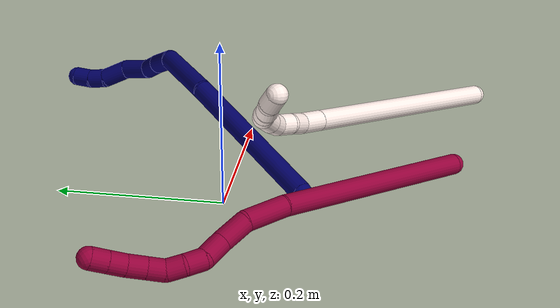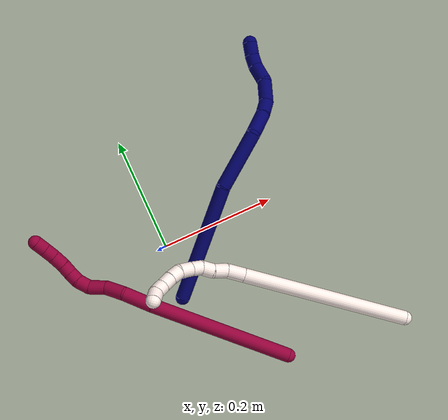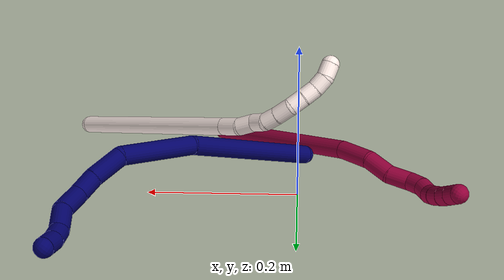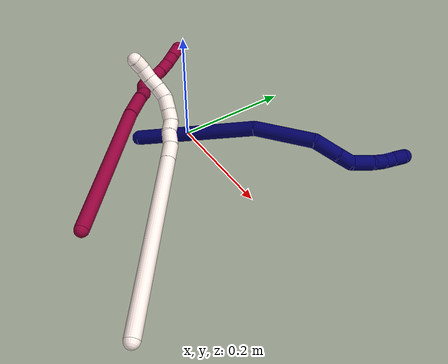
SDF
<sdf version="1.7">
 <world name="default">
  <model name="photoneo_s_sensor">
   <static>1</static>
   <pose>0 0 2 1.57079 1.57079 3.14159</pose>
   <link name="link">
    <inertial><mass>0.1</mass></inertial>
    <sensor name="sensor" type="depth">
     <update_rate>30</update_rate>
     <camera>
      <horizontal_fov>1.22</horizontal_fov>
      <image><width>1920</width><height>1200</height><format>B8G8R8</format></image>
      <clip><near>0.1</near><far>4</far></clip>
      <depth_camera><output>points</output></depth_camera>
     </camera>
     <plugin name="camera_plugin" filename="libgazebo_ros_depth_camera.so">
      <baseline>0.2</baseline>
      <alwaysOn>1</alwaysOn>
      <updateRate>0.0</updateRate>
      <cameraName>camera_ir</cameraName>
      <imageTopicName>/camera/color/image_raw</imageTopicName>
      <cameraInfoTopicName>/camera/color/camera_info</cameraInfoTopicName>
      <depthImageTopicName>/camera/depth/image_raw</depthImageTopicName>
      <depthImageCameraInfoTopicName>/camera/depth/camera_info</depthImageCameraInfoTopicName>
      <pointCloudTopicName>/camera/depth/points</pointCloudTopicName>
      <frameName>fr_optical</frameName>
      <pointCloudCutoff>0.1</pointCloudCutoff>
      <pointCloudCutoffMax>2.0</pointCloudCutoffMax>
      <distortionK1>0</distortionK1>
      <distortionK2>0</distortionK2>
      <distortionK3>0</distortionK3>
      <distortionT1>0</distortionT1>
      <distortionT2>0</distortionT2>
      <CxPrime>0</CxPrime>
      <Cx>0</Cx>
      <Cy>0</Cy>
      <focalLength>0</focalLength>
      <hackBaseline>0</hackBaseline>
     </plugin>
    </sensor>
   </link>
  </model>
  <model name="bin">
   <static>1</static>
   <link name="bottom">
    <collision name="collision-bottom">
     <pose>0 0 -0.01 0 -0 0</pose>
     <geometry><box><size>0.8 0.6 0.02</size></box></geometry>
     <surface>
      <friction><ode><mu>100</mu><mu2>100</mu2></ode></friction>
      <contact><collide_bitmask>65535</collide_bitmask></contact>
     </surface>
    </collision>
   </link>
   <link name="west_wall">
    <collision name="collision-west_wall">
     <pose>-0.41 0 0.1 0 -0 0</pose>
     <geometry><box><size>0.02 0.6 0.2</size></box></geometry>
     <surface>
      <friction><ode><mu>100</mu><mu2>100</mu2></ode></friction>
      <contact><collide_bitmask>65535</collide_bitmask></contact>
     </surface>
    </collision>
   </link>
   <link name="east_wall">
    <collision name="collision-east_wall">
     <pose>0.41 0 0.1 0 -0 0</pose>
     <geometry><box><size>0.02 0.6 0.2</size></box></geometry>
     <surface>
      <friction><ode><mu>100</mu><mu2>100</mu2></ode></friction>
      <contact><collide_bitmask>65535</collide_bitmask></contact>
     </surface>
    </collision>
   </link>
   <link name="south_wall">
    <collision name="collision-south_wall">
     <pose>0 -0.31 0.1 0 -0 0</pose>
     <geometry><box><size>0.8 0.02 0.2</size></box></geometry>
     <surface>
      <friction><ode><mu>100</mu><mu2>100</mu2></ode></friction>
      <contact><collide_bitmask>65535</collide_bitmask></contact>
     </surface>
    </collision>
   </link>
   <link name="north_wall">
    <collision name="collision-north_wall">
     <pose>0 0.31 0.1 0 -0 0</pose>
     <geometry><box><size>0.8 0.02 0.2</size></box></geometry>
     <surface>
      <friction><ode><mu>100</mu><mu2>100</mu2></ode></friction>
      <contact><collide_bitmask>65535</collide_bitmask></contact>
     </surface>
    </collision>
   </link>
  </model>
  <model name="7">
   <static>0</static>
   <link name="7">
    <collision name="collision-cylinder-e_1_1_4">
     <pose>0.052697 0.041463 -0.08074 -2.66717 0.526029 -1.67828</pose>
     <geometry><cylinder><radius>0.0125</radius><length>0.209905</length></cylinder></geometry>
     <surface>
      <friction><ode><mu>1.16</mu><mu2>1.16</mu2><slip1>0</slip1><slip2>0</slip2></ode></friction>
      <contact><ode><kp>1e+06</kp><kd>1</kd><max_vel>0</max_vel><min_depth>0.001</min_depth></ode></contact>
     </surface>
    </collision>
    <visual name="visual-cylinder-e_1_1_4">
     <pose>0.052697 0.041463 -0.08074 -2.66717 0.526029 -1.67828</pose>
     <geometry><cylinder><radius>0.0125</radius><length>0.209905</length></cylinder></geometry>
     <material><ambient>0.003922 0 0.403922 1</ambient></material>
    </visual>
    <collision name="collision-cylinder-e_2_4_5">
     <pose>0.123663 0.114634 -0.197025 -2.4132 0.366221 -0.904436</pose>
     <geometry><cylinder><radius>0.0125</radius><length>0.102033</length></cylinder></geometry>
     <surface>
      <friction><ode><mu>1.16</mu><mu2>1.16</mu2><slip1>0</slip1><slip2>0</slip2></ode></friction>
      <contact><ode><kp>1e+06</kp><kd>1</kd><max_vel>0</max_vel><min_depth>0.001</min_depth></ode></contact>
     </surface>
    </collision>
    <visual name="visual-cylinder-e_2_4_5">
     <pose>0.123663 0.114634 -0.197025 -2.4132 0.366221 -0.904436</pose>
     <geometry><cylinder><radius>0.0125</radius><length>0.102033</length></cylinder></geometry>
     <material><ambient>0.003922 0 0.403922 1</ambient></material>
    </visual>
    <collision name="collision-cylinder-e_3_5_6">
     <pose>0.148984 0.165977 -0.238738 -1.87512 0.330168 -0.446339</pose>
     <geometry><cylinder><radius>0.0125</radius><length>0.043511</length></cylinder></geometry>
     <surface>
      <friction><ode><mu>1.16</mu><mu2>1.16</mu2><slip1>0</slip1><slip2>0</slip2></ode></friction>
      <contact><ode><kp>1e+06</kp><kd>1</kd><max_vel>0</max_vel><min_depth>0.001</min_depth></ode></contact>
     </surface>
    </collision>
    <visual name="visual-cylinder-e_3_5_6">
     <pose>0.148984 0.165977 -0.238738 -1.87512 0.330168 -0.446339</pose>
     <geometry><cylinder><radius>0.0125</radius><length>0.043511</length></cylinder></geometry>
     <material><ambient>0.003922 0 0.403922 1</ambient></material>
    </visual>
    <collision name="collision-cylinder-e_4_6_7">
     <pose>0.162024 0.198414 -0.24685 -1.72156 0.433044 -0.50107</pose>
     <geometry><cylinder><radius>0.0125</radius><length>0.028531</length></cylinder></geometry>
     <surface>
      <friction><ode><mu>1.16</mu><mu2>1.16</mu2><slip1>0</slip1><slip2>0</slip2></ode></friction>
      <contact><ode><kp>1e+06</kp><kd>1</kd><max_vel>0</max_vel><min_depth>0.001</min_depth></ode></contact>
     </surface>
    </collision>
    <visual name="visual-cylinder-e_4_6_7">
     <pose>0.162024 0.198414 -0.24685 -1.72156 0.433044 -0.50107</pose>
     <geometry><cylinder><radius>0.0125</radius><length>0.028531</length></cylinder></geometry>
     <material><ambient>0.003922 0 0.403922 1</ambient></material>
    </visual>
    <collision name="collision-cylinder-e_5_7_8">
     <pose>0.182656 0.222505 -0.253274 -1.94853 0.878454 -1.21053</pose>
     <geometry><cylinder><radius>0.0125</radius><length>0.038052</length></cylinder></geometry>
     <surface>
      <friction><ode><mu>1.16</mu><mu2>1.16</mu2><slip1>0</slip1><slip2>0</slip2></ode></friction>
      <contact><ode><kp>1e+06</kp><kd>1</kd><max_vel>0</max_vel><min_depth>0.001</min_depth></ode></contact>
     </surface>
    </collision>
    <visual name="visual-cylinder-e_5_7_8">
     <pose>0.182656 0.222505 -0.253274 -1.94853 0.878454 -1.21053</pose>
     <geometry><cylinder><radius>0.0125</radius><length>0.038052</length></cylinder></geometry>
     <material><ambient>0.003922 0 0.403922 1</ambient></material>
    </visual>
    <collision name="collision-cylinder-e_6_8_9">
     <pose>0.211592 0.242413 -0.254454 -1.20517 0.9974 -0.71695</pose>
     <geometry><cylinder><radius>0.0125</radius><length>0.034023</length></cylinder></geometry>
     <surface>
      <friction><ode><mu>1.16</mu><mu2>1.16</mu2><slip1>0</slip1><slip2>0</slip2></ode></friction>
      <contact><ode><kp>1e+06</kp><kd>1</kd><max_vel>0</max_vel><min_depth>0.001</min_depth></ode></contact>
     </surface>
    </collision>
    <visual name="visual-cylinder-e_6_8_9">
     <pose>0.211592 0.242413 -0.254454 -1.20517 0.9974 -0.71695</pose>
     <geometry><cylinder><radius>0.0125</radius><length>0.034023</length></cylinder></geometry>
     <material><ambient>0.003922 0 0.403922 1</ambient></material>
    </visual>
    <collision name="collision-cylinder-e_7_9_10">
     <pose>0.235342 0.25555 -0.252372 -1.83387 1.11141 -1.36204</pose>
     <geometry><cylinder><radius>0.0125</radius><length>0.021106</length></cylinder></geometry>
     <surface>
      <friction><ode><mu>1.16</mu><mu2>1.16</mu2><slip1>0</slip1><slip2>0</slip2></ode></friction>
      <contact><ode><kp>1e+06</kp><kd>1</kd><max_vel>0</max_vel><min_depth>0.001</min_depth></ode></contact>
     </surface>
    </collision>
    <visual name="visual-cylinder-e_7_9_10">
     <pose>0.235342 0.25555 -0.252372 -1.83387 1.11141 -1.36204</pose>
     <geometry><cylinder><radius>0.0125</radius><length>0.021106</length></cylinder></geometry>
     <material><ambient>0.003922 0 0.403922 1</ambient></material>
    </visual>
    <collision name="collision-cylinder-e_8_10_2">
     <pose>0.254623 0.264582 -0.257268 -2.25468 1.03558 -1.75147</pose>
     <geometry><cylinder><radius>0.0125</radius><length>0.022838</length></cylinder></geometry>
     <surface>
      <friction><ode><mu>1.16</mu><mu2>1.16</mu2><slip1>0</slip1><slip2>0</slip2></ode></friction>
      <contact><ode><kp>1e+06</kp><kd>1</kd><max_vel>0</max_vel><min_depth>0.001</min_depth></ode></contact>
     </surface>
    </collision>
    <visual name="visual-cylinder-e_8_10_2">
     <pose>0.254623 0.264582 -0.257268 -2.25468 1.03558 -1.75147</pose>
     <geometry><cylinder><radius>0.0125</radius><length>0.022838</length></cylinder></geometry>
     <material><ambient>0.003922 0 0.403922 1</ambient></material>
    </visual>
    <collision name="collision-sphere-2">
     <pose>0.264445 0.269096 -0.260948 0 -0 0</pose>
     <geometry><sphere><radius>0.0125</radius></sphere></geometry>
     <surface>
      <friction><ode><mu>1.16</mu><mu2>1.16</mu2><slip1>0</slip1><slip2>0</slip2></ode></friction>
      <contact><ode><kp>1e+06</kp><kd>1</kd><max_vel>0</max_vel><min_depth>0.001</min_depth></ode></contact>
     </surface>
    </collision>
    <visual name="visual-sphere-2">
     <pose>0.264445 0.269096 -0.260948 0 -0 0</pose>
     <geometry><sphere><radius>0.0125</radius></sphere></geometry>
     <material><ambient>0.003922 0 0.403922 1</ambient></material>
    </visual>
    <collision name="collision-sphere-10">
     <pose>0.244801 0.260068 -0.253588 0 -0 0</pose>
     <geometry><sphere><radius>0.0125</radius></sphere></geometry>
     <surface>
      <friction><ode><mu>1.16</mu><mu2>1.16</mu2><slip1>0</slip1><slip2>0</slip2></ode></friction>
      <contact><ode><kp>1e+06</kp><kd>1</kd><max_vel>0</max_vel><min_depth>0.001</min_depth></ode></contact>
     </surface>
    </collision>
    <visual name="visual-sphere-10">
     <pose>0.244801 0.260068 -0.253588 0 -0 0</pose>
     <geometry><sphere><radius>0.0125</radius></sphere></geometry>
     <material><ambient>0.003922 0 0.403922 1</ambient></material>
    </visual>
    <collision name="collision-sphere-9">
     <pose>0.225883 0.251031 -0.251155 0 -0 0</pose>
     <geometry><sphere><radius>0.0125</radius></sphere></geometry>
     <surface>
      <friction><ode><mu>1.16</mu><mu2>1.16</mu2><slip1>0</slip1><slip2>0</slip2></ode></friction>
      <contact><ode><kp>1e+06</kp><kd>1</kd><max_vel>0</max_vel><min_depth>0.001</min_depth></ode></contact>
     </surface>
    </collision>
    <visual name="visual-sphere-9">
     <pose>0.225883 0.251031 -0.251155 0 -0 0</pose>
     <geometry><sphere><radius>0.0125</radius></sphere></geometry>
     <material><ambient>0.003922 0 0.403922 1</ambient></material>
    </visual>
    <collision name="collision-sphere-4">
     <pose>0.105394 0.082926 -0.161479 0 -0 0</pose>
     <geometry><sphere><radius>0.0125</radius></sphere></geometry>
     <surface>
      <friction><ode><mu>1.16</mu><mu2>1.16</mu2><slip1>0</slip1><slip2>0</slip2></ode></friction>
      <contact><ode><kp>1e+06</kp><kd>1</kd><max_vel>0</max_vel><min_depth>0.001</min_depth></ode></contact>
     </surface>
    </collision>
    <visual name="visual-sphere-4">
     <pose>0.105394 0.082926 -0.161479 0 -0 0</pose>
     <geometry><sphere><radius>0.0125</radius></sphere></geometry>
     <material><ambient>0.003922 0 0.403922 1</ambient></material>
    </visual>
    <collision name="collision-sphere-1">
     <geometry><sphere><radius>0.0125</radius></sphere></geometry>
     <surface>
      <friction><ode><mu>1.16</mu><mu2>1.16</mu2><slip1>0</slip1><slip2>0</slip2></ode></friction>
      <contact><ode><kp>1e+06</kp><kd>1</kd><max_vel>0</max_vel><min_depth>0.001</min_depth></ode></contact>
     </surface>
    </collision>
    <visual name="visual-sphere-1">
     <geometry><sphere><radius>0.0125</radius></sphere></geometry>
     <material><ambient>0.003922 0 0.403922 1</ambient></material>
    </visual>
    <collision name="collision-sphere-8">
     <pose>0.197301 0.233794 -0.257754 0 -0 0</pose>
     <geometry><sphere><radius>0.0125</radius></sphere></geometry>
     <surface>
      <friction><ode><mu>1.16</mu><mu2>1.16</mu2><slip1>0</slip1><slip2>0</slip2></ode></friction>
      <contact><ode><kp>1e+06</kp><kd>1</kd><max_vel>0</max_vel><min_depth>0.001</min_depth></ode></contact>
     </surface>
    </collision>
    <visual name="visual-sphere-8">
     <pose>0.197301 0.233794 -0.257754 0 -0 0</pose>
     <geometry><sphere><radius>0.0125</radius></sphere></geometry>
     <material><ambient>0.003922 0 0.403922 1</ambient></material>
    </visual>
    <collision name="collision-sphere-5">
     <pose>0.141931 0.146343 -0.232572 0 -0 0</pose>
     <geometry><sphere><radius>0.0125</radius></sphere></geometry>
     <surface>
      <friction><ode><mu>1.16</mu><mu2>1.16</mu2><slip1>0</slip1><slip2>0</slip2></ode></friction>
      <contact><ode><kp>1e+06</kp><kd>1</kd><max_vel>0</max_vel><min_depth>0.001</min_depth></ode></contact>
     </surface>
    </collision>
    <visual name="visual-sphere-5">
     <pose>0.141931 0.146343 -0.232572 0 -0 0</pose>
     <geometry><sphere><radius>0.0125</radius></sphere></geometry>
     <material><ambient>0.003922 0 0.403922 1</ambient></material>
    </visual>
    <collision name="collision-sphere-6">
     <pose>0.156037 0.185612 -0.244905 0 -0 0</pose>
     <geometry><sphere><radius>0.0125</radius></sphere></geometry>
     <surface>
      <friction><ode><mu>1.16</mu><mu2>1.16</mu2><slip1>0</slip1><slip2>0</slip2></ode></friction>
      <contact><ode><kp>1e+06</kp><kd>1</kd><max_vel>0</max_vel><min_depth>0.001</min_depth></ode></contact>
     </surface>
    </collision>
    <visual name="visual-sphere-6">
     <pose>0.156037 0.185612 -0.244905 0 -0 0</pose>
     <geometry><sphere><radius>0.0125</radius></sphere></geometry>
     <material><ambient>0.003922 0 0.403922 1</ambient></material>
    </visual>
    <collision name="collision-sphere-7">
     <pose>0.16801 0.211216 -0.248795 0 -0 0</pose>
     <geometry><sphere><radius>0.0125</radius></sphere></geometry>
     <surface>
      <friction><ode><mu>1.16</mu><mu2>1.16</mu2><slip1>0</slip1><slip2>0</slip2></ode></friction>
      <contact><ode><kp>1e+06</kp><kd>1</kd><max_vel>0</max_vel><min_depth>0.001</min_depth></ode></contact>
     </surface>
    </collision>
    <visual name="visual-sphere-7">
     <pose>0.16801 0.211216 -0.248795 0 -0 0</pose>
     <geometry><sphere><radius>0.0125</radius></sphere></geometry>
     <material><ambient>0.003922 0 0.403922 1</ambient></material>
    </visual>
    <inertial>
     <pose>0.119432 0.122867 -0.167957 0 -0 0</pose>
     <mass>0.5</mass>
     <inertia>
      <ixx>-0.000735</ixx>
      <ixy>0</ixy>
      <ixz>0</ixz>
      <iyy>-0.000493</iyy>
      <iyz>0</iyz>
      <izz>-0.000843</izz>
     </inertia>
    </inertial>
   </link>
   <pose>-0.008621 -0.092738 0.027727 -2.29654 -0.091126 1.83586</pose>
  </model>
  <model name="8">
   <static>0</static>
   <link name="8">
    <collision name="collision-cylinder-e_1_1_4">
     <pose>-0.039916 0.001844 0.121727 -0.015145 -0.316831 0.00242</pose>
     <geometry><cylinder><radius>0.0125</radius><length>0.256235</length></cylinder></geometry>
     <surface>
      <friction><ode><mu>1.16</mu><mu2>1.16</mu2><slip1>0</slip1><slip2>0</slip2></ode></friction>
      <contact><ode><kp>1e+06</kp><kd>1</kd><max_vel>0</max_vel><min_depth>0.001</min_depth></ode></contact>
     </surface>
    </collision>
    <visual name="visual-cylinder-e_1_1_4">
     <pose>-0.039916 0.001844 0.121727 -0.015145 -0.316831 0.00242</pose>
     <geometry><cylinder><radius>0.0125</radius><length>0.256235</length></cylinder></geometry>
     <material><ambient>0.584314 0 0.227451 1</ambient></material>
    </visual>
    <collision name="collision-cylinder-e_2_4_5">
     <pose>-0.083995 0.003637 0.268734 0.001991 -0.163222 -0.000163</pose>
     <geometry><cylinder><radius>0.0125</radius><length>0.051243</length></cylinder></geometry>
     <surface>
      <friction><ode><mu>1.16</mu><mu2>1.16</mu2><slip1>0</slip1><slip2>0</slip2></ode></friction>
      <contact><ode><kp>1e+06</kp><kd>1</kd><max_vel>0</max_vel><min_depth>0.001</min_depth></ode></contact>
     </surface>
    </collision>
    <visual name="visual-cylinder-e_2_4_5">
     <pose>-0.083995 0.003637 0.268734 0.001991 -0.163222 -0.000163</pose>
     <geometry><cylinder><radius>0.0125</radius><length>0.051243</length></cylinder></geometry>
     <material><ambient>0.584314 0 0.227451 1</ambient></material>
    </visual>
    <collision name="collision-cylinder-e_3_5_6">
     <pose>-0.085454 0.00589 0.311743 -0.129197 0.150169 -0.009732</pose>
     <geometry><cylinder><radius>0.0125</radius><length>0.03616</length></cylinder></geometry>
     <surface>
      <friction><ode><mu>1.16</mu><mu2>1.16</mu2><slip1>0</slip1><slip2>0</slip2></ode></friction>
      <contact><ode><kp>1e+06</kp><kd>1</kd><max_vel>0</max_vel><min_depth>0.001</min_depth></ode></contact>
     </surface>
    </collision>
    <visual name="visual-cylinder-e_3_5_6">
     <pose>-0.085454 0.00589 0.311743 -0.129197 0.150169 -0.009732</pose>
     <geometry><cylinder><radius>0.0125</radius><length>0.03616</length></cylinder></geometry>
     <material><ambient>0.584314 0 0.227451 1</ambient></material>
    </visual>
    <collision name="collision-cylinder-e_4_6_7">
     <pose>-0.083601 0.013963 0.343747 -0.384088 -0.05531 0.010757</pose>
     <geometry><cylinder><radius>0.0125</radius><length>0.030843</length></cylinder></geometry>
     <surface>
      <friction><ode><mu>1.16</mu><mu2>1.16</mu2><slip1>0</slip1><slip2>0</slip2></ode></friction>
      <contact><ode><kp>1e+06</kp><kd>1</kd><max_vel>0</max_vel><min_depth>0.001</min_depth></ode></contact>
     </surface>
    </collision>
    <visual name="visual-cylinder-e_4_6_7">
     <pose>-0.083601 0.013963 0.343747 -0.384088 -0.05531 0.010757</pose>
     <geometry><cylinder><radius>0.0125</radius><length>0.030843</length></cylinder></geometry>
     <material><ambient>0.584314 0 0.227451 1</ambient></material>
    </visual>
    <collision name="collision-cylinder-e_5_7_8">
     <pose>-0.086323 0.018712 0.369121 0.091724 -0.166152 -0.007643</pose>
     <geometry><cylinder><radius>0.0125</radius><length>0.022603</length></cylinder></geometry>
     <surface>
      <friction><ode><mu>1.16</mu><mu2>1.16</mu2><slip1>0</slip1><slip2>0</slip2></ode></friction>
      <contact><ode><kp>1e+06</kp><kd>1</kd><max_vel>0</max_vel><min_depth>0.001</min_depth></ode></contact>
     </surface>
    </collision>
    <visual name="visual-cylinder-e_5_7_8">
     <pose>-0.086323 0.018712 0.369121 0.091724 -0.166152 -0.007643</pose>
     <geometry><cylinder><radius>0.0125</radius><length>0.022603</length></cylinder></geometry>
     <material><ambient>0.584314 0 0.227451 1</ambient></material>
    </visual>
    <collision name="collision-cylinder-e_6_8_9">
     <pose>-0.088039 0.014243 0.389723 0.348033 0.015163 0.002666</pose>
     <geometry><cylinder><radius>0.0125</radius><length>0.02022</length></cylinder></geometry>
     <surface>
      <friction><ode><mu>1.16</mu><mu2>1.16</mu2><slip1>0</slip1><slip2>0</slip2></ode></friction>
      <contact><ode><kp>1e+06</kp><kd>1</kd><max_vel>0</max_vel><min_depth>0.001</min_depth></ode></contact>
     </surface>
    </collision>
    <visual name="visual-cylinder-e_6_8_9">
     <pose>-0.088039 0.014243 0.389723 0.348033 0.015163 0.002666</pose>
     <geometry><cylinder><radius>0.0125</radius><length>0.02022</length></cylinder></geometry>
     <material><ambient>0.584314 0 0.227451 1</ambient></material>
    </visual>
    <collision name="collision-cylinder-e_7_9_10">
     <pose>-0.091491 0.005898 0.407333 0.543392 -0.363767 -0.102383</pose>
     <geometry><cylinder><radius>0.0125</radius><length>0.020269</length></cylinder></geometry>
     <surface>
      <friction><ode><mu>1.16</mu><mu2>1.16</mu2><slip1>0</slip1><slip2>0</slip2></ode></friction>
      <contact><ode><kp>1e+06</kp><kd>1</kd><max_vel>0</max_vel><min_depth>0.001</min_depth></ode></contact>
     </surface>
    </collision>
    <visual name="visual-cylinder-e_7_9_10">
     <pose>-0.091491 0.005898 0.407333 0.543392 -0.363767 -0.102383</pose>
     <geometry><cylinder><radius>0.0125</radius><length>0.020269</length></cylinder></geometry>
     <material><ambient>0.584314 0 0.227451 1</ambient></material>
    </visual>
    <collision name="collision-cylinder-e_8_10_11">
     <pose>-0.099929 -0.0033 0.424571 0.440219 -0.446461 -0.101494</pose>
     <geometry><cylinder><radius>0.0125</radius><length>0.022379</length></cylinder></geometry>
     <surface>
      <friction><ode><mu>1.16</mu><mu2>1.16</mu2><slip1>0</slip1><slip2>0</slip2></ode></friction>
      <contact><ode><kp>1e+06</kp><kd>1</kd><max_vel>0</max_vel><min_depth>0.001</min_depth></ode></contact>
     </surface>
    </collision>
    <visual name="visual-cylinder-e_8_10_11">
     <pose>-0.099929 -0.0033 0.424571 0.440219 -0.446461 -0.101494</pose>
     <geometry><cylinder><radius>0.0125</radius><length>0.022379</length></cylinder></geometry>
     <material><ambient>0.584314 0 0.227451 1</ambient></material>
    </visual>
    <collision name="collision-cylinder-e_9_11_12">
     <pose>-0.109967 -0.010965 0.441553 0.404896 -0.547433 -0.115132</pose>
     <geometry><cylinder><radius>0.0125</radius><length>0.020008</length></cylinder></geometry>
     <surface>
      <friction><ode><mu>1.16</mu><mu2>1.16</mu2><slip1>0</slip1><slip2>0</slip2></ode></friction>
      <contact><ode><kp>1e+06</kp><kd>1</kd><max_vel>0</max_vel><min_depth>0.001</min_depth></ode></contact>
     </surface>
    </collision>
    <visual name="visual-cylinder-e_9_11_12">
     <pose>-0.109967 -0.010965 0.441553 0.404896 -0.547433 -0.115132</pose>
     <geometry><cylinder><radius>0.0125</radius><length>0.020008</length></cylinder></geometry>
     <material><ambient>0.584314 0 0.227451 1</ambient></material>
    </visual>
    <collision name="collision-cylinder-e_10_12_2">
     <pose>-0.120563 -0.017565 0.457208 0.392926 -0.56783 -0.116023</pose>
     <geometry><cylinder><radius>0.0125</radius><length>0.02004</length></cylinder></geometry>
     <surface>
      <friction><ode><mu>1.16</mu><mu2>1.16</mu2><slip1>0</slip1><slip2>0</slip2></ode></friction>
      <contact><ode><kp>1e+06</kp><kd>1</kd><max_vel>0</max_vel><min_depth>0.001</min_depth></ode></contact>
     </surface>
    </collision>
    <visual name="visual-cylinder-e_10_12_2">
     <pose>-0.120563 -0.017565 0.457208 0.392926 -0.56783 -0.116023</pose>
     <geometry><cylinder><radius>0.0125</radius><length>0.02004</length></cylinder></geometry>
     <material><ambient>0.584314 0 0.227451 1</ambient></material>
    </visual>
    <collision name="collision-sphere-2">
     <pose>-0.125952 -0.020799 0.465012 0 -0 0</pose>
     <geometry><sphere><radius>0.0125</radius></sphere></geometry>
     <surface>
      <friction><ode><mu>1.16</mu><mu2>1.16</mu2><slip1>0</slip1><slip2>0</slip2></ode></friction>
      <contact><ode><kp>1e+06</kp><kd>1</kd><max_vel>0</max_vel><min_depth>0.001</min_depth></ode></contact>
     </surface>
    </collision>
    <visual name="visual-sphere-2">
     <pose>-0.125952 -0.020799 0.465012 0 -0 0</pose>
     <geometry><sphere><radius>0.0125</radius></sphere></geometry>
     <material><ambient>0.584314 0 0.227451 1</ambient></material>
    </visual>
    <collision name="collision-sphere-12">
     <pose>-0.115174 -0.01433 0.449404 0 -0 0</pose>
     <geometry><sphere><radius>0.0125</radius></sphere></geometry>
     <surface>
      <friction><ode><mu>1.16</mu><mu2>1.16</mu2><slip1>0</slip1><slip2>0</slip2></ode></friction>
      <contact><ode><kp>1e+06</kp><kd>1</kd><max_vel>0</max_vel><min_depth>0.001</min_depth></ode></contact>
     </surface>
    </collision>
    <visual name="visual-sphere-12">
     <pose>-0.115174 -0.01433 0.449404 0 -0 0</pose>
     <geometry><sphere><radius>0.0125</radius></sphere></geometry>
     <material><ambient>0.584314 0 0.227451 1</ambient></material>
    </visual>
    <collision name="collision-sphere-11">
     <pose>-0.10476 -0.007601 0.433701 0 -0 0</pose>
     <geometry><sphere><radius>0.0125</radius></sphere></geometry>
     <surface>
      <friction><ode><mu>1.16</mu><mu2>1.16</mu2><slip1>0</slip1><slip2>0</slip2></ode></friction>
      <contact><ode><kp>1e+06</kp><kd>1</kd><max_vel>0</max_vel><min_depth>0.001</min_depth></ode></contact>
     </surface>
    </collision>
    <visual name="visual-sphere-11">
     <pose>-0.10476 -0.007601 0.433701 0 -0 0</pose>
     <geometry><sphere><radius>0.0125</radius></sphere></geometry>
     <material><ambient>0.584314 0 0.227451 1</ambient></material>
    </visual>
    <collision name="collision-sphere-10">
     <pose>-0.095097 0.001001 0.41544 0 -0 0</pose>
     <geometry><sphere><radius>0.0125</radius></sphere></geometry>
     <surface>
      <friction><ode><mu>1.16</mu><mu2>1.16</mu2><slip1>0</slip1><slip2>0</slip2></ode></friction>
      <contact><ode><kp>1e+06</kp><kd>1</kd><max_vel>0</max_vel><min_depth>0.001</min_depth></ode></contact>
     </surface>
    </collision>
    <visual name="visual-sphere-10">
     <pose>-0.095097 0.001001 0.41544 0 -0 0</pose>
     <geometry><sphere><radius>0.0125</radius></sphere></geometry>
     <material><ambient>0.584314 0 0.227451 1</ambient></material>
    </visual>
    <collision name="collision-sphere-9">
     <pose>-0.087885 0.010795 0.399226 0 -0 0</pose>
     <geometry><sphere><radius>0.0125</radius></sphere></geometry>
     <surface>
      <friction><ode><mu>1.16</mu><mu2>1.16</mu2><slip1>0</slip1><slip2>0</slip2></ode></friction>
      <contact><ode><kp>1e+06</kp><kd>1</kd><max_vel>0</max_vel><min_depth>0.001</min_depth></ode></contact>
     </surface>
    </collision>
    <visual name="visual-sphere-9">
     <pose>-0.087885 0.010795 0.399226 0 -0 0</pose>
     <geometry><sphere><radius>0.0125</radius></sphere></geometry>
     <material><ambient>0.584314 0 0.227451 1</ambient></material>
    </visual>
    <collision name="collision-sphere-4">
     <pose>-0.079832 0.003687 0.243453 0 -0 0</pose>
     <geometry><sphere><radius>0.0125</radius></sphere></geometry>
     <surface>
      <friction><ode><mu>1.16</mu><mu2>1.16</mu2><slip1>0</slip1><slip2>0</slip2></ode></friction>
      <contact><ode><kp>1e+06</kp><kd>1</kd><max_vel>0</max_vel><min_depth>0.001</min_depth></ode></contact>
     </surface>
    </collision>
    <visual name="visual-sphere-4">
     <pose>-0.079832 0.003687 0.243453 0 -0 0</pose>
     <geometry><sphere><radius>0.0125</radius></sphere></geometry>
     <material><ambient>0.584314 0 0.227451 1</ambient></material>
    </visual>
    <collision name="collision-sphere-1">
     <geometry><sphere><radius>0.0125</radius></sphere></geometry>
     <surface>
      <friction><ode><mu>1.16</mu><mu2>1.16</mu2><slip1>0</slip1><slip2>0</slip2></ode></friction>
      <contact><ode><kp>1e+06</kp><kd>1</kd><max_vel>0</max_vel><min_depth>0.001</min_depth></ode></contact>
     </surface>
    </collision>
    <visual name="visual-sphere-1">
     <geometry><sphere><radius>0.0125</radius></sphere></geometry>
     <material><ambient>0.584314 0 0.227451 1</ambient></material>
    </visual>
    <collision name="collision-sphere-8">
     <pose>-0.088192 0.017691 0.38022 0 -0 0</pose>
     <geometry><sphere><radius>0.0125</radius></sphere></geometry>
     <surface>
      <friction><ode><mu>1.16</mu><mu2>1.16</mu2><slip1>0</slip1><slip2>0</slip2></ode></friction>
      <contact><ode><kp>1e+06</kp><kd>1</kd><max_vel>0</max_vel><min_depth>0.001</min_depth></ode></contact>
     </surface>
    </collision>
    <visual name="visual-sphere-8">
     <pose>-0.088192 0.017691 0.38022 0 -0 0</pose>
     <geometry><sphere><radius>0.0125</radius></sphere></geometry>
     <material><ambient>0.584314 0 0.227451 1</ambient></material>
    </visual>
    <collision name="collision-sphere-5">
     <pose>-0.088159 0.003587 0.294015 0 -0 0</pose>
     <geometry><sphere><radius>0.0125</radius></sphere></geometry>
     <surface>
      <friction><ode><mu>1.16</mu><mu2>1.16</mu2><slip1>0</slip1><slip2>0</slip2></ode></friction>
      <contact><ode><kp>1e+06</kp><kd>1</kd><max_vel>0</max_vel><min_depth>0.001</min_depth></ode></contact>
     </surface>
    </collision>
    <visual name="visual-sphere-5">
     <pose>-0.088159 0.003587 0.294015 0 -0 0</pose>
     <geometry><sphere><radius>0.0125</radius></sphere></geometry>
     <material><ambient>0.584314 0 0.227451 1</ambient></material>
    </visual>
    <collision name="collision-sphere-6">
     <pose>-0.082749 0.008193 0.329471 0 -0 0</pose>
     <geometry><sphere><radius>0.0125</radius></sphere></geometry>
     <surface>
      <friction><ode><mu>1.16</mu><mu2>1.16</mu2><slip1>0</slip1><slip2>0</slip2></ode></friction>
      <contact><ode><kp>1e+06</kp><kd>1</kd><max_vel>0</max_vel><min_depth>0.001</min_depth></ode></contact>
     </surface>
    </collision>
    <visual name="visual-sphere-6">
     <pose>-0.082749 0.008193 0.329471 0 -0 0</pose>
     <geometry><sphere><radius>0.0125</radius></sphere></geometry>
     <material><ambient>0.584314 0 0.227451 1</ambient></material>
    </visual>
    <collision name="collision-sphere-7">
     <pose>-0.084454 0.019733 0.358023 0 -0 0</pose>
     <geometry><sphere><radius>0.0125</radius></sphere></geometry>
     <surface>
      <friction><ode><mu>1.16</mu><mu2>1.16</mu2><slip1>0</slip1><slip2>0</slip2></ode></friction>
      <contact><ode><kp>1e+06</kp><kd>1</kd><max_vel>0</max_vel><min_depth>0.001</min_depth></ode></contact>
     </surface>
    </collision>
    <visual name="visual-sphere-7">
     <pose>-0.084454 0.019733 0.358023 0 -0 0</pose>
     <geometry><sphere><radius>0.0125</radius></sphere></geometry>
     <material><ambient>0.584314 0 0.227451 1</ambient></material>
    </visual>
    <inertial>
     <pose>-0.065278 0.002975 0.237629 0 -0 0</pose>
     <mass>0.5</mass>
     <inertia>
      <ixx>0.001365</ixx>
      <ixy>0</ixy>
      <ixz>0</ixz>
      <iyy>0.001444</iyy>
      <iyz>0</iyz>
      <izz>0.000462</izz>
     </inertia>
    </inertial>
   </link>
   <pose>0.116647 -0.263154 0.012628 -2.76321 1.34198 -0.446962</pose>
  </model>
  <model name="11">
   <static>0</static>
   <link name="11">
    <collision name="collision-cylinder-e_1_1_4">
     <pose>0.001076 -0.002585 -0.149424 3.12429 0.007199 0.788672</pose>
     <geometry><cylinder><radius>0.0125</radius><length>0.2989</length></cylinder></geometry>
     <surface>
      <friction><ode><mu>1.16</mu><mu2>1.16</mu2><slip1>0</slip1><slip2>0</slip2></ode></friction>
      <contact><ode><kp>1e+06</kp><kd>1</kd><max_vel>0</max_vel><min_depth>0.001</min_depth></ode></contact>
     </surface>
    </collision>
    <visual name="visual-cylinder-e_1_1_4">
     <pose>0.001076 -0.002585 -0.149424 3.12429 0.007199 0.788672</pose>
     <geometry><cylinder><radius>0.0125</radius><length>0.2989</length></cylinder></geometry>
     <material><ambient>1 0.933333 0.909804 1</ambient></material>
    </visual>
    <collision name="collision-cylinder-e_2_4_5">
     <pose>0.002292 -0.005444 -0.314133 3.12372 0.009148 0.945989</pose>
     <geometry><cylinder><radius>0.0125</radius><length>0.030577</length></cylinder></geometry>
     <surface>
      <friction><ode><mu>1.16</mu><mu2>1.16</mu2><slip1>0</slip1><slip2>0</slip2></ode></friction>
      <contact><ode><kp>1e+06</kp><kd>1</kd><max_vel>0</max_vel><min_depth>0.001</min_depth></ode></contact>
     </surface>
    </collision>
    <visual name="visual-cylinder-e_2_4_5">
     <pose>0.002292 -0.005444 -0.314133 3.12372 0.009148 0.945989</pose>
     <geometry><cylinder><radius>0.0125</radius><length>0.030577</length></cylinder></geometry>
     <material><ambient>1 0.933333 0.909804 1</ambient></material>
    </visual>
    <collision name="collision-cylinder-e_3_5_6">
     <pose>0.004133 -0.009393 -0.340931 2.83252 0.139837 0.844986</pose>
     <geometry><cylinder><radius>0.0125</radius><length>0.024409</length></cylinder></geometry>
     <surface>
      <friction><ode><mu>1.16</mu><mu2>1.16</mu2><slip1>0</slip1><slip2>0</slip2></ode></friction>
      <contact><ode><kp>1e+06</kp><kd>1</kd><max_vel>0</max_vel><min_depth>0.001</min_depth></ode></contact>
     </surface>
    </collision>
    <visual name="visual-cylinder-e_3_5_6">
     <pose>0.004133 -0.009393 -0.340931 2.83252 0.139837 0.844986</pose>
     <geometry><cylinder><radius>0.0125</radius><length>0.024409</length></cylinder></geometry>
     <material><ambient>1 0.933333 0.909804 1</ambient></material>
    </visual>
    <collision name="collision-cylinder-e_4_6_7">
     <pose>0.005514 -0.013653 -0.363036 3.08656 -0.03012 -1.00145</pose>
     <geometry><cylinder><radius>0.0125</radius><length>0.021226</length></cylinder></geometry>
     <surface>
      <friction><ode><mu>1.16</mu><mu2>1.16</mu2><slip1>0</slip1><slip2>0</slip2></ode></friction>
      <contact><ode><kp>1e+06</kp><kd>1</kd><max_vel>0</max_vel><min_depth>0.001</min_depth></ode></contact>
     </surface>
    </collision>
    <visual name="visual-cylinder-e_4_6_7">
     <pose>0.005514 -0.013653 -0.363036 3.08656 -0.03012 -1.00145</pose>
     <geometry><cylinder><radius>0.0125</radius><length>0.021226</length></cylinder></geometry>
     <material><ambient>1 0.933333 0.909804 1</ambient></material>
    </visual>
    <collision name="collision-cylinder-e_5_7_8">
     <pose>0.006319 -0.019411 -0.382456 2.61137 0.109492 0.398335</pose>
     <geometry><cylinder><radius>0.0125</radius><length>0.020589</length></cylinder></geometry>
     <surface>
      <friction><ode><mu>1.16</mu><mu2>1.16</mu2><slip1>0</slip1><slip2>0</slip2></ode></friction>
      <contact><ode><kp>1e+06</kp><kd>1</kd><max_vel>0</max_vel><min_depth>0.001</min_depth></ode></contact>
     </surface>
    </collision>
    <visual name="visual-cylinder-e_5_7_8">
     <pose>0.006319 -0.019411 -0.382456 2.61137 0.109492 0.398335</pose>
     <geometry><cylinder><radius>0.0125</radius><length>0.020589</length></cylinder></geometry>
     <material><ambient>1 0.933333 0.909804 1</ambient></material>
    </visual>
    <collision name="collision-cylinder-e_6_8_9">
     <pose>0.008537 -0.031371 -0.400905 2.52735 0.092591 0.290101</pose>
     <geometry><cylinder><radius>0.0125</radius><length>0.023648</length></cylinder></geometry>
     <surface>
      <friction><ode><mu>1.16</mu><mu2>1.16</mu2><slip1>0</slip1><slip2>0</slip2></ode></friction>
      <contact><ode><kp>1e+06</kp><kd>1</kd><max_vel>0</max_vel><min_depth>0.001</min_depth></ode></contact>
     </surface>
    </collision>
    <visual name="visual-cylinder-e_6_8_9">
     <pose>0.008537 -0.031371 -0.400905 2.52735 0.092591 0.290101</pose>
     <geometry><cylinder><radius>0.0125</radius><length>0.023648</length></cylinder></geometry>
     <material><ambient>1 0.933333 0.909804 1</ambient></material>
    </visual>
    <collision name="collision-cylinder-e_7_9_10">
     <pose>0.013317 -0.045687 -0.416464 2.23857 0.366975 0.730995</pose>
     <geometry><cylinder><radius>0.0125</radius><length>0.020547</length></cylinder></geometry>
     <surface>
      <friction><ode><mu>1.16</mu><mu2>1.16</mu2><slip1>0</slip1><slip2>0</slip2></ode></friction>
      <contact><ode><kp>1e+06</kp><kd>1</kd><max_vel>0</max_vel><min_depth>0.001</min_depth></ode></contact>
     </surface>
    </collision>
    <visual name="visual-cylinder-e_7_9_10">
     <pose>0.013317 -0.045687 -0.416464 2.23857 0.366975 0.730995</pose>
     <geometry><cylinder><radius>0.0125</radius><length>0.020547</length></cylinder></geometry>
     <material><ambient>1 0.933333 0.909804 1</ambient></material>
    </visual>
    <collision name="collision-cylinder-e_8_10_11">
     <pose>0.021188 -0.060886 -0.427297 2.1388 0.431169 0.760196</pose>
     <geometry><cylinder><radius>0.0125</radius><length>0.020029</length></cylinder></geometry>
     <surface>
      <friction><ode><mu>1.16</mu><mu2>1.16</mu2><slip1>0</slip1><slip2>0</slip2></ode></friction>
      <contact><ode><kp>1e+06</kp><kd>1</kd><max_vel>0</max_vel><min_depth>0.001</min_depth></ode></contact>
     </surface>
    </collision>
    <visual name="visual-cylinder-e_8_10_11">
     <pose>0.021188 -0.060886 -0.427297 2.1388 0.431169 0.760196</pose>
     <geometry><cylinder><radius>0.0125</radius><length>0.020029</length></cylinder></geometry>
     <material><ambient>1 0.933333 0.909804 1</ambient></material>
    </visual>
    <collision name="collision-cylinder-e_9_11_12">
     <pose>0.027666 -0.077163 -0.436746 2.0575 0.231133 0.38085</pose>
     <geometry><cylinder><radius>0.0125</radius><length>0.020011</length></cylinder></geometry>
     <surface>
      <friction><ode><mu>1.16</mu><mu2>1.16</mu2><slip1>0</slip1><slip2>0</slip2></ode></friction>
      <contact><ode><kp>1e+06</kp><kd>1</kd><max_vel>0</max_vel><min_depth>0.001</min_depth></ode></contact>
     </surface>
    </collision>
    <visual name="visual-cylinder-e_9_11_12">
     <pose>0.027666 -0.077163 -0.436746 2.0575 0.231133 0.38085</pose>
     <geometry><cylinder><radius>0.0125</radius><length>0.020011</length></cylinder></geometry>
     <material><ambient>1 0.933333 0.909804 1</ambient></material>
    </visual>
    <collision name="collision-cylinder-e_10_12_2">
     <pose>0.031355 -0.095656 -0.442299 1.6714 0.139775 0.154539</pose>
     <geometry><cylinder><radius>0.0125</radius><length>0.020064</length></cylinder></geometry>
     <surface>
      <friction><ode><mu>1.16</mu><mu2>1.16</mu2><slip1>0</slip1><slip2>0</slip2></ode></friction>
      <contact><ode><kp>1e+06</kp><kd>1</kd><max_vel>0</max_vel><min_depth>0.001</min_depth></ode></contact>
     </surface>
    </collision>
    <visual name="visual-cylinder-e_10_12_2">
     <pose>0.031355 -0.095656 -0.442299 1.6714 0.139775 0.154539</pose>
     <geometry><cylinder><radius>0.0125</radius><length>0.020064</length></cylinder></geometry>
     <material><ambient>1 0.933333 0.909804 1</ambient></material>
    </visual>
    <collision name="collision-sphere-2">
     <pose>0.032753 -0.10554 -0.443297 0 -0 0</pose>
     <geometry><sphere><radius>0.0125</radius></sphere></geometry>
     <surface>
      <friction><ode><mu>1.16</mu><mu2>1.16</mu2><slip1>0</slip1><slip2>0</slip2></ode></friction>
      <contact><ode><kp>1e+06</kp><kd>1</kd><max_vel>0</max_vel><min_depth>0.001</min_depth></ode></contact>
     </surface>
    </collision>
    <visual name="visual-sphere-2">
     <pose>0.032753 -0.10554 -0.443297 0 -0 0</pose>
     <geometry><sphere><radius>0.0125</radius></sphere></geometry>
     <material><ambient>1 0.933333 0.909804 1</ambient></material>
    </visual>
    <collision name="collision-sphere-12">
     <pose>0.029958 -0.085772 -0.441301 0 -0 0</pose>
     <geometry><sphere><radius>0.0125</radius></sphere></geometry>
     <surface>
      <friction><ode><mu>1.16</mu><mu2>1.16</mu2><slip1>0</slip1><slip2>0</slip2></ode></friction>
      <contact><ode><kp>1e+06</kp><kd>1</kd><max_vel>0</max_vel><min_depth>0.001</min_depth></ode></contact>
     </surface>
    </collision>
    <visual name="visual-sphere-12">
     <pose>0.029958 -0.085772 -0.441301 0 -0 0</pose>
     <geometry><sphere><radius>0.0125</radius></sphere></geometry>
     <material><ambient>1 0.933333 0.909804 1</ambient></material>
    </visual>
    <collision name="collision-sphere-11">
     <pose>0.025374 -0.068555 -0.432191 0 -0 0</pose>
     <geometry><sphere><radius>0.0125</radius></sphere></geometry>
     <surface>
      <friction><ode><mu>1.16</mu><mu2>1.16</mu2><slip1>0</slip1><slip2>0</slip2></ode></friction>
      <contact><ode><kp>1e+06</kp><kd>1</kd><max_vel>0</max_vel><min_depth>0.001</min_depth></ode></contact>
     </surface>
    </collision>
    <visual name="visual-sphere-11">
     <pose>0.025374 -0.068555 -0.432191 0 -0 0</pose>
     <geometry><sphere><radius>0.0125</radius></sphere></geometry>
     <material><ambient>1 0.933333 0.909804 1</ambient></material>
    </visual>
    <collision name="collision-sphere-10">
     <pose>0.017003 -0.053216 -0.422403 0 -0 0</pose>
     <geometry><sphere><radius>0.0125</radius></sphere></geometry>
     <surface>
      <friction><ode><mu>1.16</mu><mu2>1.16</mu2><slip1>0</slip1><slip2>0</slip2></ode></friction>
      <contact><ode><kp>1e+06</kp><kd>1</kd><max_vel>0</max_vel><min_depth>0.001</min_depth></ode></contact>
     </surface>
    </collision>
    <visual name="visual-sphere-10">
     <pose>0.017003 -0.053216 -0.422403 0 -0 0</pose>
     <geometry><sphere><radius>0.0125</radius></sphere></geometry>
     <material><ambient>1 0.933333 0.909804 1</ambient></material>
    </visual>
    <collision name="collision-sphere-9">
     <pose>0.009631 -0.038157 -0.410526 0 -0 0</pose>
     <geometry><sphere><radius>0.0125</radius></sphere></geometry>
     <surface>
      <friction><ode><mu>1.16</mu><mu2>1.16</mu2><slip1>0</slip1><slip2>0</slip2></ode></friction>
      <contact><ode><kp>1e+06</kp><kd>1</kd><max_vel>0</max_vel><min_depth>0.001</min_depth></ode></contact>
     </surface>
    </collision>
    <visual name="visual-sphere-9">
     <pose>0.009631 -0.038157 -0.410526 0 -0 0</pose>
     <geometry><sphere><radius>0.0125</radius></sphere></geometry>
     <material><ambient>1 0.933333 0.909804 1</ambient></material>
    </visual>
    <collision name="collision-sphere-4">
     <pose>0.002152 -0.00517 -0.298847 0 -0 0</pose>
     <geometry><sphere><radius>0.0125</radius></sphere></geometry>
     <surface>
      <friction><ode><mu>1.16</mu><mu2>1.16</mu2><slip1>0</slip1><slip2>0</slip2></ode></friction>
      <contact><ode><kp>1e+06</kp><kd>1</kd><max_vel>0</max_vel><min_depth>0.001</min_depth></ode></contact>
     </surface>
    </collision>
    <visual name="visual-sphere-4">
     <pose>0.002152 -0.00517 -0.298847 0 -0 0</pose>
     <geometry><sphere><radius>0.0125</radius></sphere></geometry>
     <material><ambient>1 0.933333 0.909804 1</ambient></material>
    </visual>
    <collision name="collision-sphere-1">
     <geometry><sphere><radius>0.0125</radius></sphere></geometry>
     <surface>
      <friction><ode><mu>1.16</mu><mu2>1.16</mu2><slip1>0</slip1><slip2>0</slip2></ode></friction>
      <contact><ode><kp>1e+06</kp><kd>1</kd><max_vel>0</max_vel><min_depth>0.001</min_depth></ode></contact>
     </surface>
    </collision>
    <visual name="visual-sphere-1">
     <geometry><sphere><radius>0.0125</radius></sphere></geometry>
     <material><ambient>1 0.933333 0.909804 1</ambient></material>
    </visual>
    <collision name="collision-sphere-8">
     <pose>0.007444 -0.024586 -0.391283 0 -0 0</pose>
     <geometry><sphere><radius>0.0125</radius></sphere></geometry>
     <surface>
      <friction><ode><mu>1.16</mu><mu2>1.16</mu2><slip1>0</slip1><slip2>0</slip2></ode></friction>
      <contact><ode><kp>1e+06</kp><kd>1</kd><max_vel>0</max_vel><min_depth>0.001</min_depth></ode></contact>
     </surface>
    </collision>
    <visual name="visual-sphere-8">
     <pose>0.007444 -0.024586 -0.391283 0 -0 0</pose>
     <geometry><sphere><radius>0.0125</radius></sphere></geometry>
     <material><ambient>1 0.933333 0.909804 1</ambient></material>
    </visual>
    <collision name="collision-sphere-5">
     <pose>0.002431 -0.005717 -0.329418 0 -0 0</pose>
     <geometry><sphere><radius>0.0125</radius></sphere></geometry>
     <surface>
      <friction><ode><mu>1.16</mu><mu2>1.16</mu2><slip1>0</slip1><slip2>0</slip2></ode></friction>
      <contact><ode><kp>1e+06</kp><kd>1</kd><max_vel>0</max_vel><min_depth>0.001</min_depth></ode></contact>
     </surface>
    </collision>
    <visual name="visual-sphere-5">
     <pose>0.002431 -0.005717 -0.329418 0 -0 0</pose>
     <geometry><sphere><radius>0.0125</radius></sphere></geometry>
     <material><ambient>1 0.933333 0.909804 1</ambient></material>
    </visual>
    <collision name="collision-sphere-6">
     <pose>0.005834 -0.013069 -0.352444 0 -0 0</pose>
     <geometry><sphere><radius>0.0125</radius></sphere></geometry>
     <surface>
      <friction><ode><mu>1.16</mu><mu2>1.16</mu2><slip1>0</slip1><slip2>0</slip2></ode></friction>
      <contact><ode><kp>1e+06</kp><kd>1</kd><max_vel>0</max_vel><min_depth>0.001</min_depth></ode></contact>
     </surface>
    </collision>
    <visual name="visual-sphere-6">
     <pose>0.005834 -0.013069 -0.352444 0 -0 0</pose>
     <geometry><sphere><radius>0.0125</radius></sphere></geometry>
     <material><ambient>1 0.933333 0.909804 1</ambient></material>
    </visual>
    <collision name="collision-sphere-7">
     <pose>0.005194 -0.014236 -0.373628 0 -0 0</pose>
     <geometry><sphere><radius>0.0125</radius></sphere></geometry>
     <surface>
      <friction><ode><mu>1.16</mu><mu2>1.16</mu2><slip1>0</slip1><slip2>0</slip2></ode></friction>
      <contact><ode><kp>1e+06</kp><kd>1</kd><max_vel>0</max_vel><min_depth>0.001</min_depth></ode></contact>
     </surface>
    </collision>
    <visual name="visual-sphere-7">
     <pose>0.005194 -0.014236 -0.373628 0 -0 0</pose>
     <geometry><sphere><radius>0.0125</radius></sphere></geometry>
     <material><ambient>1 0.933333 0.909804 1</ambient></material>
    </visual>
    <inertial>
     <pose>0.005645 -0.016443 -0.24476 0 -0 0</pose>
     <mass>0.5</mass>
     <inertia><ixx>0.003185</ixx><ixy>0</ixy><ixz>0</ixz><iyy>1e-06</iyy><iyz>0</iyz><izz>-7e-06</izz></inertia>
    </inertial>
   </link>
   <pose>0.32973 -0.288389 0.012453 -1.75793 0.480115 -2.37264</pose>
  </model>
 </world>
</sdf>
